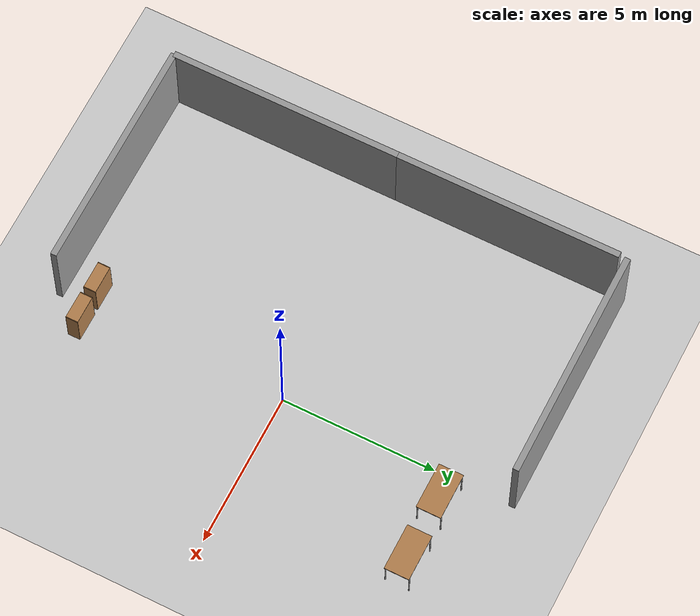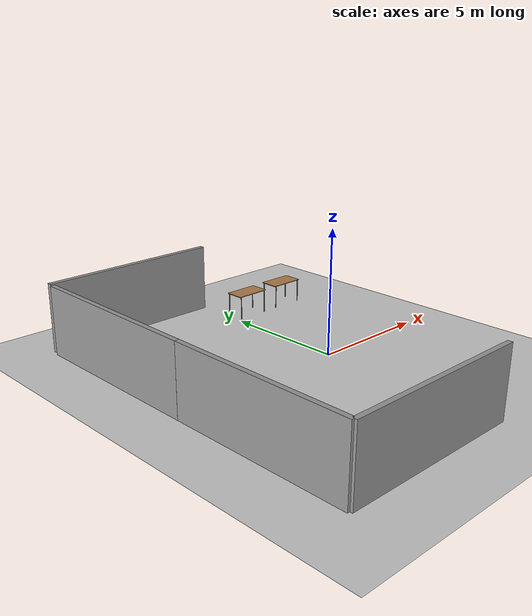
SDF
<sdf version="1.7">
 <world name="default">
  <model name="ground_plane">
   <static>1</static>
   <link name="link">
    <collision name="collision">
     <geometry><plane><normal>0 0 1</normal><size>100 100</size></plane></geometry>
     <surface><friction><ode><mu>100</mu><mu2>50</mu2></ode></friction></surface>
    </collision>
    <visual name="visual">
     <cast_shadows>0</cast_shadows>
     <geometry><plane><normal>0 0 1</normal><size>100 100</size></plane></geometry>
     <material>
      <script><uri>file://media/materials/scripts/gazebo.material</uri><name>Gazebo/Grey</name></script>
     </material>
    </visual>
   </link>
  </model>
  <model name="grey_wall_0">
   <static>1</static>
   <link name="link">
    <pose>0 0 1.4 0 -0 0</pose>
    <collision name="collision"><geometry><box><size>7.5 0.2 2.8</size></box></geometry></collision>
    <visual name="visual">
     <cast_shadows>0</cast_shadows>
     <geometry><box><size>7.5 0.2 2.8</size></box></geometry>
     <material>
      <script>
       <uri>model://grey_wall/materials/scripts</uri>
       <uri>model://grey_wall/materials/textures</uri>
       <name>vrc/grey_wall</name>
      </script>
     </material>
    </visual>
   </link>
   <pose>-3.75 7.5 0 0 -0 0</pose>
  </model>
  <model name="grey_wall_1">
   <static>1</static>
   <link name="link">
    <pose>0 0 1.4 0 -0 0</pose>
    <collision name="collision"><geometry><box><size>7.5 0.2 2.8</size></box></geometry></collision>
    <visual name="visual">
     <cast_shadows>0</cast_shadows>
     <geometry><box><size>7.5 0.2 2.8</size></box></geometry>
     <material>
      <script>
       <uri>model://grey_wall/materials/scripts</uri>
       <uri>model://grey_wall/materials/textures</uri>
       <name>vrc/grey_wall</name>
      </script>
     </material>
    </visual>
   </link>
   <pose>-3.75 -7.5 0 0 -0 0</pose>
  </model>
  <model name="grey_wall_3">
   <static>1</static>
   <link name="link">
    <pose>0 0 1.4 0 -0 0</pose>
    <collision name="collision"><geometry><box><size>7.5 0.2 2.8</size></box></geometry></collision>
    <visual name="visual">
     <cast_shadows>0</cast_shadows>
     <geometry><box><size>7.5 0.2 2.8</size></box></geometry>
     <material>
      <script>
       <uri>model://grey_wall/materials/scripts</uri>
       <uri>model://grey_wall/materials/textures</uri>
       <name>vrc/grey_wall</name>
      </script>
     </material>
    </visual>
   </link>
   <pose>-7.5 -3.75 0 0 -0 1.5707</pose>
  </model>
  <model name="grey_wall_4">
   <static>1</static>
   <link name="link">
    <pose>0 0 1.4 0 -0 0</pose>
    <collision name="collision"><geometry><box><size>7.5 0.2 2.8</size></box></geometry></collision>
    <visual name="visual">
     <cast_shadows>0</cast_shadows>
     <geometry><box><size>7.5 0.2 2.8</size></box></geometry>
     <material>
      <script>
       <uri>model://grey_wall/materials/scripts</uri>
       <uri>model://grey_wall/materials/textures</uri>
       <name>vrc/grey_wall</name>
      </script>
     </material>
    </visual>
   </link>
   <pose>-7.5 3.5 0 0 -0 1.5707</pose>
  </model>
  <model name="table_0">
   <static>1</static>
   <link name="link">
    <collision name="surface">
     <pose>0 0 1 0 -0 0</pose>
     <geometry><box><size>1.5 0.8 0.03</size></box></geometry>
     <surface><friction><ode><mu>0.6</mu><mu2>0.6</mu2></ode></friction></surface>
    </collision>
    <visual name="visual1">
     <pose>0 0 1 0 -0 0</pose>
     <geometry><box><size>1.5 0.8 0.03</size></box></geometry>
     <material>
      <script><uri>file://media/materials/scripts/gazebo.material</uri><name>Gazebo/Wood</name></script>
     </material>
    </visual>
    <collision name="front_left_leg">
     <pose>0.68 0.38 0.5 0 -0 0</pose>
     <geometry><cylinder><radius>0.02</radius><length>1</length></cylinder></geometry>
    </collision>
    <visual name="front_left_leg">
     <pose>0.68 0.38 0.5 0 -0 0</pose>
     <geometry><cylinder><radius>0.02</radius><length>1</length></cylinder></geometry>
     <material>
      <script><uri>file://media/materials/scripts/gazebo.material</uri><name>Gazebo/Grey</name></script>
     </material>
    </visual>
    <collision name="front_right_leg">
     <pose>0.68 -0.38 0.5 0 -0 0</pose>
     <geometry><cylinder><radius>0.02</radius><length>1</length></cylinder></geometry>
    </collision>
    <visual name="front_right_leg">
     <pose>0.68 -0.38 0.5 0 -0 0</pose>
     <geometry><cylinder><radius>0.02</radius><length>1</length></cylinder></geometry>
     <material>
      <script><uri>file://media/materials/scripts/gazebo.material</uri><name>Gazebo/Grey</name></script>
     </material>
    </visual>
    <collision name="back_right_leg">
     <pose>-0.68 -0.38 0.5 0 -0 0</pose>
     <geometry><cylinder><radius>0.02</radius><length>1</length></cylinder></geometry>
    </collision>
    <visual name="back_right_leg">
     <pose>-0.68 -0.38 0.5 0 -0 0</pose>
     <geometry><cylinder><radius>0.02</radius><length>1</length></cylinder></geometry>
     <material>
      <script><uri>file://media/materials/scripts/gazebo.material</uri><name>Gazebo/Grey</name></script>
     </material>
    </visual>
    <collision name="back_left_leg">
     <pose>-0.68 0.38 0.5 0 -0 0</pose>
     <geometry><cylinder><radius>0.02</radius><length>1</length></cylinder></geometry>
    </collision>
    <visual name="back_left_leg">
     <pose>-0.68 0.38 0.5 0 -0 0</pose>
     <geometry><cylinder><radius>0.02</radius><length>1</length></cylinder></geometry>
     <material>
      <script><uri>file://media/materials/scripts/gazebo.material</uri><name>Gazebo/Grey</name></script>
     </material>
    </visual>
   </link>
   <pose>2.9899 5.60651 0 0 -0 0</pose>
  </model>
  <model name="table_1">
   <static>1</static>
   <link name="link">
    <collision name="surface">
     <pose>0 0 1 0 -0 0</pose>
     <geometry><box><size>1.5 0.8 0.03</size></box></geometry>
     <surface><friction><ode><mu>0.6</mu><mu2>0.6</mu2></ode></friction></surface>
    </collision>
    <visual name="visual1">
     <pose>0 0 1 0 -0 0</pose>
     <geometry><box><size>1.5 0.8 0.03</size></box></geometry>
     <material>
      <script><uri>file://media/materials/scripts/gazebo.material</uri><name>Gazebo/Wood</name></script>
     </material>
    </visual>
    <collision name="front_left_leg">
     <pose>0.68 0.38 0.5 0 -0 0</pose>
     <geometry><cylinder><radius>0.02</radius><length>1</length></cylinder></geometry>
    </collision>
    <visual name="front_left_leg">
     <pose>0.68 0.38 0.5 0 -0 0</pose>
     <geometry><cylinder><radius>0.02</radius><length>1</length></cylinder></geometry>
     <material>
      <script><uri>file://media/materials/scripts/gazebo.material</uri><name>Gazebo/Grey</name></script>
     </material>
    </visual>
    <collision name="front_right_leg">
     <pose>0.68 -0.38 0.5 0 -0 0</pose>
     <geometry><cylinder><radius>0.02</radius><length>1</length></cylinder></geometry>
    </collision>
    <visual name="front_right_leg">
     <pose>0.68 -0.38 0.5 0 -0 0</pose>
     <geometry><cylinder><radius>0.02</radius><length>1</length></cylinder></geometry>
     <material>
      <script><uri>file://media/materials/scripts/gazebo.material</uri><name>Gazebo/Grey</name></script>
     </material>
    </visual>
    <collision name="back_right_leg">
     <pose>-0.68 -0.38 0.5 0 -0 0</pose>
     <geometry><cylinder><radius>0.02</radius><length>1</length></cylinder></geometry>
    </collision>
    <visual name="back_right_leg">
     <pose>-0.68 -0.38 0.5 0 -0 0</pose>
     <geometry><cylinder><radius>0.02</radius><length>1</length></cylinder></geometry>
     <material>
      <script><uri>file://media/materials/scripts/gazebo.material</uri><name>Gazebo/Grey</name></script>
     </material>
    </visual>
    <collision name="back_left_leg">
     <pose>-0.68 0.38 0.5 0 -0 0</pose>
     <geometry><cylinder><radius>0.02</radius><length>1</length></cylinder></geometry>
    </collision>
    <visual name="back_left_leg">
     <pose>-0.68 0.38 0.5 0 -0 0</pose>
     <geometry><cylinder><radius>0.02</radius><length>1</length></cylinder></geometry>
     <material>
      <script><uri>file://media/materials/scripts/gazebo.material</uri><name>Gazebo/Grey</name></script>
     </material>
    </visual>
   </link>
   <pose>0.879963 5.57753 0 0 -0 0</pose>
  </model>
  <model name="bookshelf">
   <static>1</static>
   <link name="link">
    <inertial><mass>1</mass></inertial>
    <collision name="back">
     <pose>0 0.005 0.6 0 -0 0</pose>
     <geometry><box><size>0.9 0.01 1.2</size></box></geometry>
    </collision>
    <visual name="visual1">
     <pose>0 0.005 0.6 0 -0 0</pose>
     <geometry><box><size>0.9 0.01 1.2</size></box></geometry>
     <material>
      <script><uri>file://media/materials/scripts/gazebo.material</uri><name>Gazebo/Wood</name></script>
     </material>
    </visual>
    <collision name="left_side">
     <pose>0.45 -0.195 0.6 0 -0 0</pose>
     <geometry><box><size>0.02 0.4 1.2</size></box></geometry>
    </collision>
    <visual name="visual2">
     <pose>0.45 -0.195 0.6 0 -0 0</pose>
     <geometry><box><size>0.02 0.4 1.2</size></box></geometry>
     <material>
      <script><uri>file://media/materials/scripts/gazebo.material</uri><name>Gazebo/Wood</name></script>
     </material>
    </visual>
    <collision name="right_side">
     <pose>-0.45 -0.195 0.6 0 -0 0</pose>
     <geometry><box><size>0.02 0.4 1.2</size></box></geometry>
    </collision>
    <visual name="visual3">
     <pose>-0.45 -0.195 0.6 0 -0 0</pose>
     <geometry><box><size>0.02 0.4 1.2</size></box></geometry>
     <material>
      <script><uri>file://media/materials/scripts/gazebo.material</uri><name>Gazebo/Wood</name></script>
     </material>
    </visual>
    <collision name="bottom">
     <pose>0 -0.195 0.03 0 -0 0</pose>
     <geometry><box><size>0.88 0.4 0.06</size></box></geometry>
    </collision>
    <visual name="visual4">
     <pose>0 -0.195 0.03 0 -0 0</pose>
     <geometry><box><size>0.88 0.4 0.06</size></box></geometry>
     <material>
      <script><uri>file://media/materials/scripts/gazebo.material</uri><name>Gazebo/Wood</name></script>
     </material>
    </visual>
    <collision name="top">
     <pose>0 -0.195 1.19 0 -0 0</pose>
     <geometry><box><size>0.88 0.4 0.02</size></box></geometry>
    </collision>
    <visual name="visual5">
     <pose>0 -0.195 1.19 0 -0 0</pose>
     <geometry><box><size>0.88 0.4 0.02</size></box></geometry>
     <material>
      <script><uri>file://media/materials/scripts/gazebo.material</uri><name>Gazebo/Wood</name></script>
     </material>
    </visual>
    <collision name="low_shelf">
     <pose>0 -0.195 0.43 0 -0 0</pose>
     <geometry><box><size>0.88 0.4 0.02</size></box></geometry>
    </collision>
    <visual name="visual6">
     <pose>0 -0.195 0.43 0 -0 0</pose>
     <geometry><box><size>0.88 0.4 0.02</size></box></geometry>
     <material>
      <script><uri>file://media/materials/scripts/gazebo.material</uri><name>Gazebo/Wood</name></script>
     </material>
    </visual>
    <collision name="high_shelf">
     <pose>0 -0.195 0.8 0 -0 0</pose>
     <geometry><box><size>0.88 0.4 0.02</size></box></geometry>
    </collision>
    <visual name="visual7">
     <pose>0 -0.195 0.8 0 -0 0</pose>
     <geometry><box><size>0.88 0.4 0.02</size></box></geometry>
     <material>
      <script><uri>file://media/materials/scripts/gazebo.material</uri><name>Gazebo/Wood</name></script>
     </material>
    </visual>
   </link>
   <pose>0.533012 -6.27333 0 0 -0 0</pose>
  </model>
  <model name="bookshelf_0">
   <static>1</static>
   <link name="link">
    <inertial><mass>1</mass></inertial>
    <collision name="back">
     <pose>0 0.005 0.6 0 -0 0</pose>
     <geometry><box><size>0.9 0.01 1.2</size></box></geometry>
    </collision>
    <visual name="visual1">
     <pose>0 0.005 0.6 0 -0 0</pose>
     <geometry><box><size>0.9 0.01 1.2</size></box></geometry>
     <material>
      <script><uri>file://media/materials/scripts/gazebo.material</uri><name>Gazebo/Wood</name></script>
     </material>
    </visual>
    <collision name="left_side">
     <pose>0.45 -0.195 0.6 0 -0 0</pose>
     <geometry><box><size>0.02 0.4 1.2</size></box></geometry>
    </collision>
    <visual name="visual2">
     <pose>0.45 -0.195 0.6 0 -0 0</pose>
     <geometry><box><size>0.02 0.4 1.2</size></box></geometry>
     <material>
      <script><uri>file://media/materials/scripts/gazebo.material</uri><name>Gazebo/Wood</name></script>
     </material>
    </visual>
    <collision name="right_side">
     <pose>-0.45 -0.195 0.6 0 -0 0</pose>
     <geometry><box><size>0.02 0.4 1.2</size></box></geometry>
    </collision>
    <visual name="visual3">
     <pose>-0.45 -0.195 0.6 0 -0 0</pose>
     <geometry><box><size>0.02 0.4 1.2</size></box></geometry>
     <material>
      <script><uri>file://media/materials/scripts/gazebo.material</uri><name>Gazebo/Wood</name></script>
     </material>
    </visual>
    <collision name="bottom">
     <pose>0 -0.195 0.03 0 -0 0</pose>
     <geometry><box><size>0.88 0.4 0.06</size></box></geometry>
    </collision>
    <visual name="visual4">
     <pose>0 -0.195 0.03 0 -0 0</pose>
     <geometry><box><size>0.88 0.4 0.06</size></box></geometry>
     <material>
      <script><uri>file://media/materials/scripts/gazebo.material</uri><name>Gazebo/Wood</name></script>
     </material>
    </visual>
    <collision name="top">
     <pose>0 -0.195 1.19 0 -0 0</pose>
     <geometry><box><size>0.88 0.4 0.02</size></box></geometry>
    </collision>
    <visual name="visual5">
     <pose>0 -0.195 1.19 0 -0 0</pose>
     <geometry><box><size>0.88 0.4 0.02</size></box></geometry>
     <material>
      <script><uri>file://media/materials/scripts/gazebo.material</uri><name>Gazebo/Wood</name></script>
     </material>
    </visual>
    <collision name="low_shelf">
     <pose>0 -0.195 0.43 0 -0 0</pose>
     <geometry><box><size>0.88 0.4 0.02</size></box></geometry>
    </collision>
    <visual name="visual6">
     <pose>0 -0.195 0.43 0 -0 0</pose>
     <geometry><box><size>0.88 0.4 0.02</size></box></geometry>
     <material>
      <script><uri>file://media/materials/scripts/gazebo.material</uri><name>Gazebo/Wood</name></script>
     </material>
    </visual>
    <collision name="high_shelf">
     <pose>0 -0.195 0.8 0 -0 0</pose>
     <geometry><box><size>0.88 0.4 0.02</size></box></geometry>
    </collision>
    <visual name="visual7">
     <pose>0 -0.195 0.8 0 -0 0</pose>
     <geometry><box><size>0.88 0.4 0.02</size></box></geometry>
     <material>
      <script><uri>file://media/materials/scripts/gazebo.material</uri><name>Gazebo/Wood</name></script>
     </material>
    </visual>
   </link>
   <pose>-0.565327 -6.27333 0 0 -0 0</pose>
  </model>
 </world>
</sdf>
